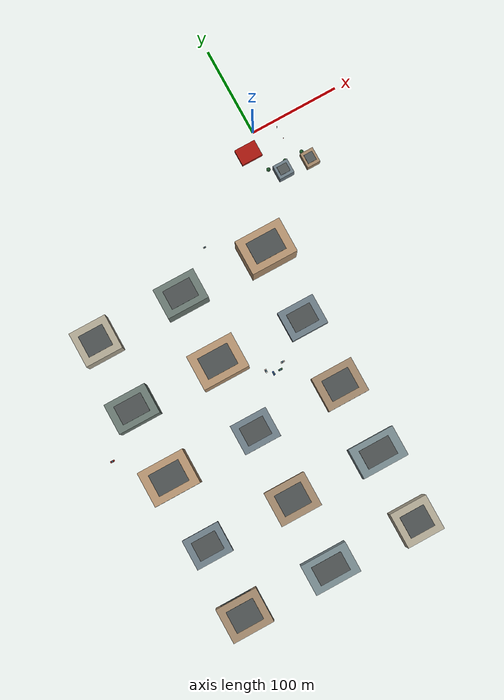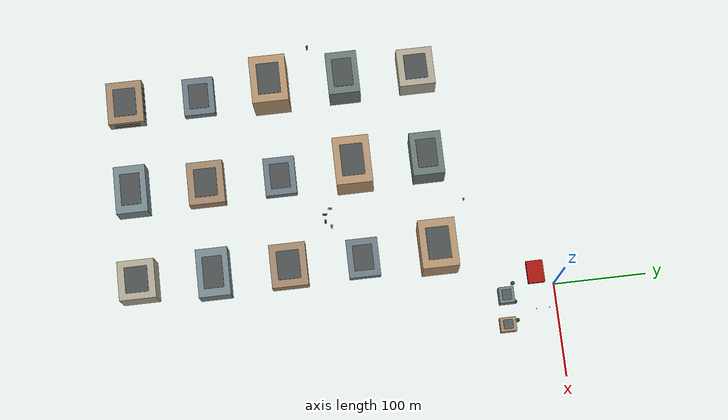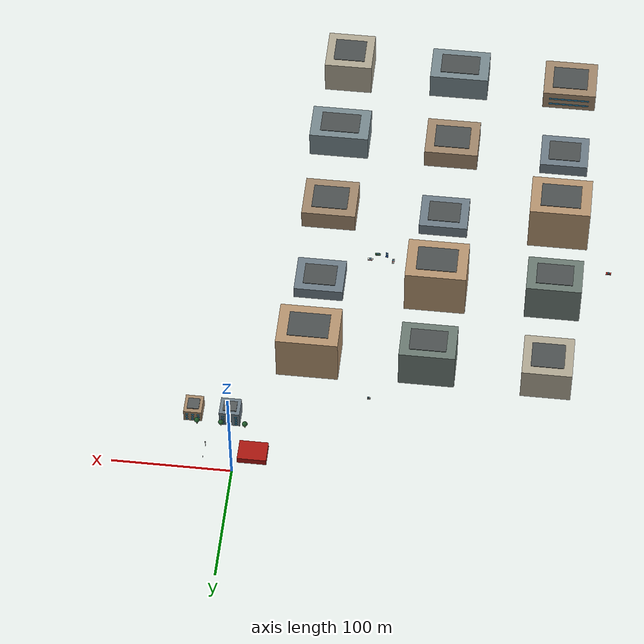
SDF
<sdf version="1.9">
 <world name="smart_city">
  <model name="emergency_station">
   <static>true</static>
   <pose>-15 -18 3 0 0 0</pose>
   <link name="building">
    <collision name="collision"><geometry><box><size>24 18 6</size></box></geometry></collision>
    <visual name="visual">
     <geometry><box><size>24 18 6</size></box></geometry>
     <material><ambient>0.65 0.08 0.05 1</ambient><diffuse>0.65 0.08 0.05 1</diffuse></material>
    </visual>
   </link>
  </model>
  <model name="city_block_06">
   <static>true</static>
   <pose>8 -53 0 0 0 0</pose>
   <link name="building">
    <visual name="facade">
     <pose>0 0 8.0 0 0 0</pose>
     <geometry><box><size>17 16 16</size></box></geometry>
     <material><ambient>0.42 0.48 0.52 1</ambient><diffuse>0.42 0.48 0.52 1</diffuse></material>
    </visual>
    <visual name="window_0_-544">
     <pose>-5.44 8.025 2.00 0 0 0</pose>
     <geometry><box><size>2.2 0.08 1.7</size></box></geometry>
     <material>
      <ambient>0.22 0.60 0.76 1</ambient>
      <diffuse>0.22 0.60 0.76 1</diffuse>
      <specular>0.35 0.35 0.35 1</specular>
     </material>
    </visual>
    <visual name="window_0_0">
     <pose>0.00 8.025 2.00 0 0 0</pose>
     <geometry><box><size>2.2 0.08 1.7</size></box></geometry>
     <material>
      <ambient>0.22 0.60 0.76 1</ambient>
      <diffuse>0.22 0.60 0.76 1</diffuse>
      <specular>0.35 0.35 0.35 1</specular>
     </material>
    </visual>
    <visual name="window_0_544">
     <pose>5.44 8.025 2.00 0 0 0</pose>
     <geometry><box><size>2.2 0.08 1.7</size></box></geometry>
     <material>
      <ambient>0.22 0.60 0.76 1</ambient>
      <diffuse>0.22 0.60 0.76 1</diffuse>
      <specular>0.35 0.35 0.35 1</specular>
     </material>
    </visual>
    <visual name="window_1_-544">
     <pose>-5.44 8.025 5.20 0 0 0</pose>
     <geometry><box><size>2.2 0.08 1.7</size></box></geometry>
     <material>
      <ambient>0.22 0.60 0.76 1</ambient>
      <diffuse>0.22 0.60 0.76 1</diffuse>
      <specular>0.35 0.35 0.35 1</specular>
     </material>
    </visual>
    <visual name="window_1_0">
     <pose>0.00 8.025 5.20 0 0 0</pose>
     <geometry><box><size>2.2 0.08 1.7</size></box></geometry>
     <material>
      <ambient>0.22 0.60 0.76 1</ambient>
      <diffuse>0.22 0.60 0.76 1</diffuse>
      <specular>0.35 0.35 0.35 1</specular>
     </material>
    </visual>
    <visual name="window_1_544">
     <pose>5.44 8.025 5.20 0 0 0</pose>
     <geometry><box><size>2.2 0.08 1.7</size></box></geometry>
     <material>
      <ambient>0.22 0.60 0.76 1</ambient>
      <diffuse>0.22 0.60 0.76 1</diffuse>
      <specular>0.35 0.35 0.35 1</specular>
     </material>
    </visual>
    <visual name="window_2_-544">
     <pose>-5.44 8.025 8.40 0 0 0</pose>
     <geometry><box><size>2.2 0.08 1.7</size></box></geometry>
     <material>
      <ambient>0.22 0.60 0.76 1</ambient>
      <diffuse>0.22 0.60 0.76 1</diffuse>
      <specular>0.35 0.35 0.35 1</specular>
     </material>
    </visual>
    <visual name="window_2_0">
     <pose>0.00 8.025 8.40 0 0 0</pose>
     <geometry><box><size>2.2 0.08 1.7</size></box></geometry>
     <material>
      <ambient>0.22 0.60 0.76 1</ambient>
      <diffuse>0.22 0.60 0.76 1</diffuse>
      <specular>0.35 0.35 0.35 1</specular>
     </material>
    </visual>
    <visual name="window_2_544">
     <pose>5.44 8.025 8.40 0 0 0</pose>
     <geometry><box><size>2.2 0.08 1.7</size></box></geometry>
     <material>
      <ambient>0.22 0.60 0.76 1</ambient>
      <diffuse>0.22 0.60 0.76 1</diffuse>
      <specular>0.35 0.35 0.35 1</specular>
     </material>
    </visual>
    <visual name="window_3_-544">
     <pose>-5.44 8.025 11.60 0 0 0</pose>
     <geometry><box><size>2.2 0.08 1.7</size></box></geometry>
     <material>
      <ambient>0.22 0.60 0.76 1</ambient>
      <diffuse>0.22 0.60 0.76 1</diffuse>
      <specular>0.35 0.35 0.35 1</specular>
     </material>
    </visual>
    <visual name="window_3_0">
     <pose>0.00 8.025 11.60 0 0 0</pose>
     <geometry><box><size>2.2 0.08 1.7</size></box></geometry>
     <material>
      <ambient>0.22 0.60 0.76 1</ambient>
      <diffuse>0.22 0.60 0.76 1</diffuse>
      <specular>0.35 0.35 0.35 1</specular>
     </material>
    </visual>
    <visual name="window_3_544">
     <pose>5.44 8.025 11.60 0 0 0</pose>
     <geometry><box><size>2.2 0.08 1.7</size></box></geometry>
     <material>
      <ambient>0.22 0.60 0.76 1</ambient>
      <diffuse>0.22 0.60 0.76 1</diffuse>
      <specular>0.35 0.35 0.35 1</specular>
     </material>
    </visual>
    <visual name="roof">
     <pose>0 0 16.4 0 0 0</pose>
     <geometry><box><size>11.1 9.6 0.8</size></box></geometry>
     <material><ambient>0.32 0.34 0.34 1</ambient><diffuse>0.32 0.34 0.34 1</diffuse></material>
    </visual>
   </link>
  </model>
  <model name="city_block_07">
   <static>true</static>
   <pose>39 -55 0 0 0 0</pose>
   <link name="building">
    <visual name="facade">
     <pose>0 0 6.0 0 0 0</pose>
     <geometry><box><size>15 17 12</size></box></geometry>
     <material><ambient>0.63 0.52 0.40 1</ambient><diffuse>0.63 0.52 0.40 1</diffuse></material>
    </visual>
    <visual name="window_0_-480">
     <pose>-4.80 8.525 2.00 0 0 0</pose>
     <geometry><box><size>2.2 0.08 1.7</size></box></geometry>
     <material>
      <ambient>0.25 0.62 0.78 1</ambient>
      <diffuse>0.25 0.62 0.78 1</diffuse>
      <specular>0.35 0.35 0.35 1</specular>
     </material>
    </visual>
    <visual name="window_0_0">
     <pose>0.00 8.525 2.00 0 0 0</pose>
     <geometry><box><size>2.2 0.08 1.7</size></box></geometry>
     <material>
      <ambient>0.25 0.62 0.78 1</ambient>
      <diffuse>0.25 0.62 0.78 1</diffuse>
      <specular>0.35 0.35 0.35 1</specular>
     </material>
    </visual>
    <visual name="window_0_480">
     <pose>4.80 8.525 2.00 0 0 0</pose>
     <geometry><box><size>2.2 0.08 1.7</size></box></geometry>
     <material>
      <ambient>0.25 0.62 0.78 1</ambient>
      <diffuse>0.25 0.62 0.78 1</diffuse>
      <specular>0.35 0.35 0.35 1</specular>
     </material>
    </visual>
    <visual name="window_1_-480">
     <pose>-4.80 8.525 5.20 0 0 0</pose>
     <geometry><box><size>2.2 0.08 1.7</size></box></geometry>
     <material>
      <ambient>0.25 0.62 0.78 1</ambient>
      <diffuse>0.25 0.62 0.78 1</diffuse>
      <specular>0.35 0.35 0.35 1</specular>
     </material>
    </visual>
    <visual name="window_1_0">
     <pose>0.00 8.525 5.20 0 0 0</pose>
     <geometry><box><size>2.2 0.08 1.7</size></box></geometry>
     <material>
      <ambient>0.25 0.62 0.78 1</ambient>
      <diffuse>0.25 0.62 0.78 1</diffuse>
      <specular>0.35 0.35 0.35 1</specular>
     </material>
    </visual>
    <visual name="window_1_480">
     <pose>4.80 8.525 5.20 0 0 0</pose>
     <geometry><box><size>2.2 0.08 1.7</size></box></geometry>
     <material>
      <ambient>0.25 0.62 0.78 1</ambient>
      <diffuse>0.25 0.62 0.78 1</diffuse>
      <specular>0.35 0.35 0.35 1</specular>
     </material>
    </visual>
    <visual name="window_2_-480">
     <pose>-4.80 8.525 8.40 0 0 0</pose>
     <geometry><box><size>2.2 0.08 1.7</size></box></geometry>
     <material>
      <ambient>0.25 0.62 0.78 1</ambient>
      <diffuse>0.25 0.62 0.78 1</diffuse>
      <specular>0.35 0.35 0.35 1</specular>
     </material>
    </visual>
    <visual name="window_2_0">
     <pose>0.00 8.525 8.40 0 0 0</pose>
     <geometry><box><size>2.2 0.08 1.7</size></box></geometry>
     <material>
      <ambient>0.25 0.62 0.78 1</ambient>
      <diffuse>0.25 0.62 0.78 1</diffuse>
      <specular>0.35 0.35 0.35 1</specular>
     </material>
    </visual>
    <visual name="window_2_480">
     <pose>4.80 8.525 8.40 0 0 0</pose>
     <geometry><box><size>2.2 0.08 1.7</size></box></geometry>
     <material>
      <ambient>0.25 0.62 0.78 1</ambient>
      <diffuse>0.25 0.62 0.78 1</diffuse>
      <specular>0.35 0.35 0.35 1</specular>
     </material>
    </visual>
    <visual name="roof">
     <pose>0 0 12.4 0 0 0</pose>
     <geometry><box><size>9.8 10.2 0.8</size></box></geometry>
     <material><ambient>0.32 0.34 0.34 1</ambient><diffuse>0.32 0.34 0.34 1</diffuse></material>
    </visual>
   </link>
  </model>
  <model name="street_tree_09">
   <static>true</static>
   <pose>-5 -44 0 0 0 0</pose>
   <link name="tree">
    <visual name="trunk">
     <pose>0 0 2 0 0 0</pose>
     <geometry><cylinder><radius>0.35</radius><length>4</length></cylinder></geometry>
     <material><ambient>0.30 0.18 0.08 1</ambient><diffuse>0.30 0.18 0.08 1</diffuse></material>
    </visual>
    <visual name="crown">
     <pose>0 0 5 0 0 0</pose>
     <geometry><sphere><radius>2.2</radius></sphere></geometry>
     <material><ambient>0.12 0.34 0.16 1</ambient><diffuse>0.12 0.34 0.16 1</diffuse></material>
    </visual>
   </link>
  </model>
  <model name="street_tree_10">
   <static>true</static>
   <pose>15 -44 0 0 0 0</pose>
   <link name="tree">
    <visual name="trunk">
     <pose>0 0 2 0 0 0</pose>
     <geometry><cylinder><radius>0.35</radius><length>4</length></cylinder></geometry>
     <material><ambient>0.30 0.18 0.08 1</ambient><diffuse>0.30 0.18 0.08 1</diffuse></material>
    </visual>
    <visual name="crown">
     <pose>0 0 5 0 0 0</pose>
     <geometry><sphere><radius>2.2</radius></sphere></geometry>
     <material><ambient>0.12 0.34 0.16 1</ambient><diffuse>0.12 0.34 0.16 1</diffuse></material>
    </visual>
   </link>
  </model>
  <model name="street_tree_11">
   <static>true</static>
   <pose>35 -44 0 0 0 0</pose>
   <link name="tree">
    <visual name="trunk">
     <pose>0 0 2 0 0 0</pose>
     <geometry><cylinder><radius>0.35</radius><length>4</length></cylinder></geometry>
     <material><ambient>0.30 0.18 0.08 1</ambient><diffuse>0.30 0.18 0.08 1</diffuse></material>
    </visual>
    <visual name="crown">
     <pose>0 0 5 0 0 0</pose>
     <geometry><sphere><radius>2.2</radius></sphere></geometry>
     <material><ambient>0.12 0.34 0.16 1</ambient><diffuse>0.12 0.34 0.16 1</diffuse></material>
    </visual>
   </link>
  </model>
  <model name="traffic_signal_5">
   <static>true</static>
   <pose>25 -8 0 0 0 0</pose>
   <link name="signal">
    <visual name="mast">
     <pose>0 0 3 0 0 0</pose>
     <geometry><cylinder><radius>0.12</radius><length>6</length></cylinder></geometry>
     <material><ambient>0.12 0.12 0.12 1</ambient><diffuse>0.12 0.12 0.12 1</diffuse></material>
    </visual>
    <visual name="head">
     <pose>0 0 5.8 0 0 0</pose>
     <geometry><box><size>0.55 0.65 1.5</size></box></geometry>
     <material><ambient>0.16 0.17 0.16 1</ambient><diffuse>0.16 0.17 0.16 1</diffuse></material>
    </visual>
    <visual name="red_lamp">
     <pose>0 -0.34 6.2 0 0 0</pose>
     <geometry><sphere><radius>0.16</radius></sphere></geometry>
     <material>
      <ambient>0.9 0.04 0.02 1</ambient>
      <diffuse>0.9 0.04 0.02 1</diffuse>
      <emissive>0.6 0 0 1</emissive>
     </material>
    </visual>
    <visual name="green_lamp">
     <pose>0 -0.34 5.35 0 0 0</pose>
     <geometry><sphere><radius>0.16</radius></sphere></geometry>
     <material><ambient>0.02 0.7 0.12 1</ambient><diffuse>0.02 0.7 0.12 1</diffuse></material>
    </visual>
   </link>
  </model>
  <model name="traffic_signal_6">
   <static>true</static>
   <pose>25 -22 0 0 0 0</pose>
   <link name="signal">
    <visual name="mast">
     <pose>0 0 3 0 0 0</pose>
     <geometry><cylinder><radius>0.12</radius><length>6</length></cylinder></geometry>
     <material><ambient>0.12 0.12 0.12 1</ambient><diffuse>0.12 0.12 0.12 1</diffuse></material>
    </visual>
    <visual name="head">
     <pose>0 0 5.8 0 0 0</pose>
     <geometry><box><size>0.55 0.65 1.5</size></box></geometry>
     <material><ambient>0.16 0.17 0.16 1</ambient><diffuse>0.16 0.17 0.16 1</diffuse></material>
    </visual>
    <visual name="red_lamp">
     <pose>0 -0.34 6.2 0 0 0</pose>
     <geometry><sphere><radius>0.16</radius></sphere></geometry>
     <material>
      <ambient>0.9 0.04 0.02 1</ambient>
      <diffuse>0.9 0.04 0.02 1</diffuse>
      <emissive>0.6 0 0 1</emissive>
     </material>
    </visual>
    <visual name="green_lamp">
     <pose>0 -0.34 5.35 0 0 0</pose>
     <geometry><sphere><radius>0.16</radius></sphere></geometry>
     <material><ambient>0.02 0.7 0.12 1</ambient><diffuse>0.02 0.7 0.12 1</diffuse></material>
    </visual>
   </link>
  </model>
  <model name="chennai_block_001">
   <static>true</static>
   <pose>-250 -440 0 0 0 0</pose>
   <link name="building">
    <collision name="structure">
     <pose>0 0 9.5 0 0 0</pose>
     <geometry><box><size>47 39 19</size></box></geometry>
    </collision>
    <visual name="facade">
     <pose>0 0 9.5 0 0 0</pose>
     <geometry><box><size>47 39 19</size></box></geometry>
     <material><ambient>0.62 0.52 0.41 1</ambient><diffuse>0.62 0.52 0.41 1</diffuse></material>
    </visual>
    <visual name="window_band_y_5_-1">
     <pose>0 -19.54 5.32 0 0 0</pose>
     <geometry><box><size>35.7 0.06 1.8</size></box></geometry>
     <material><ambient>0.20 0.52 0.68 1</ambient><diffuse>0.20 0.52 0.68 1</diffuse></material>
    </visual>
    <visual name="window_band_x_5_-1">
     <pose>-23.54 0 5.32 0 0 0</pose>
     <geometry><box><size>0.06 28.1 1.8</size></box></geometry>
     <material><ambient>0.20 0.52 0.68 1</ambient><diffuse>0.20 0.52 0.68 1</diffuse></material>
    </visual>
    <visual name="window_band_y_5_1">
     <pose>0 19.54 5.32 0 0 0</pose>
     <geometry><box><size>35.7 0.06 1.8</size></box></geometry>
     <material><ambient>0.20 0.52 0.68 1</ambient><diffuse>0.20 0.52 0.68 1</diffuse></material>
    </visual>
    <visual name="window_band_x_5_1">
     <pose>23.54 0 5.32 0 0 0</pose>
     <geometry><box><size>0.06 28.1 1.8</size></box></geometry>
     <material><ambient>0.20 0.52 0.68 1</ambient><diffuse>0.20 0.52 0.68 1</diffuse></material>
    </visual>
    <visual name="window_band_y_11_-1">
     <pose>0 -19.54 11.78 0 0 0</pose>
     <geometry><box><size>35.7 0.06 1.8</size></box></geometry>
     <material><ambient>0.20 0.52 0.68 1</ambient><diffuse>0.20 0.52 0.68 1</diffuse></material>
    </visual>
    <visual name="window_band_x_11_-1">
     <pose>-23.54 0 11.78 0 0 0</pose>
     <geometry><box><size>0.06 28.1 1.8</size></box></geometry>
     <material><ambient>0.20 0.52 0.68 1</ambient><diffuse>0.20 0.52 0.68 1</diffuse></material>
    </visual>
    <visual name="window_band_y_11_1">
     <pose>0 19.54 11.78 0 0 0</pose>
     <geometry><box><size>35.7 0.06 1.8</size></box></geometry>
     <material><ambient>0.20 0.52 0.68 1</ambient><diffuse>0.20 0.52 0.68 1</diffuse></material>
    </visual>
    <visual name="window_band_x_11_1">
     <pose>23.54 0 11.78 0 0 0</pose>
     <geometry><box><size>0.06 28.1 1.8</size></box></geometry>
     <material><ambient>0.20 0.52 0.68 1</ambient><diffuse>0.20 0.52 0.68 1</diffuse></material>
    </visual>
    <visual name="roof">
     <pose>0 0 19.3 0 0 0</pose>
     <geometry><box><size>31.0 24.2 0.6</size></box></geometry>
     <material><ambient>0.29 0.31 0.31 1</ambient><diffuse>0.29 0.31 0.31 1</diffuse></material>
    </visual>
   </link>
  </model>
  <model name="chennai_block_002">
   <static>true</static>
   <pose>-150 -440 0 0 0 0</pose>
   <link name="building">
    <collision name="structure">
     <pose>0 0 13.0 0 0 0</pose>
     <geometry><box><size>52 34 26</size></box></geometry>
    </collision>
    <visual name="facade">
     <pose>0 0 13.0 0 0 0</pose>
     <geometry><box><size>52 34 26</size></box></geometry>
     <material><ambient>0.46 0.53 0.55 1</ambient><diffuse>0.46 0.53 0.55 1</diffuse></material>
    </visual>
    <visual name="roof">
     <pose>0 0 26.3 0 0 0</pose>
     <geometry><box><size>34.3 21.1 0.6</size></box></geometry>
     <material><ambient>0.29 0.31 0.31 1</ambient><diffuse>0.29 0.31 0.31 1</diffuse></material>
    </visual>
   </link>
  </model>
  <model name="chennai_block_003">
   <static>true</static>
   <pose>-50 -440 0 0 0 0</pose>
   <link name="building">
    <collision name="structure">
     <pose>0 0 16.5 0 0 0</pose>
     <geometry><box><size>42 39 33</size></box></geometry>
    </collision>
    <visual name="facade">
     <pose>0 0 16.5 0 0 0</pose>
     <geometry><box><size>42 39 33</size></box></geometry>
     <material><ambient>0.68 0.65 0.57 1</ambient><diffuse>0.68 0.65 0.57 1</diffuse></material>
    </visual>
    <visual name="roof">
     <pose>0 0 33.3 0 0 0</pose>
     <geometry><box><size>27.7 24.2 0.6</size></box></geometry>
     <material><ambient>0.29 0.31 0.31 1</ambient><diffuse>0.29 0.31 0.31 1</diffuse></material>
    </visual>
   </link>
  </model>
  <model name="chennai_block_012">
   <static>true</static>
   <pose>-250 -360 0 0 0 0</pose>
   <link name="building">
    <collision name="structure">
     <pose>0 0 6.0 0 0 0</pose>
     <geometry><box><size>42 34 12</size></box></geometry>
    </collision>
    <visual name="facade">
     <pose>0 0 6.0 0 0 0</pose>
     <geometry><box><size>42 34 12</size></box></geometry>
     <material><ambient>0.42 0.48 0.52 1</ambient><diffuse>0.42 0.48 0.52 1</diffuse></material>
    </visual>
    <visual name="roof">
     <pose>0 0 12.3 0 0 0</pose>
     <geometry><box><size>27.7 21.1 0.6</size></box></geometry>
     <material><ambient>0.29 0.31 0.31 1</ambient><diffuse>0.29 0.31 0.31 1</diffuse></material>
    </visual>
   </link>
  </model>
  <model name="chennai_block_013">
   <static>true</static>
   <pose>-150 -360 0 0 0 0</pose>
   <link name="building">
    <collision name="structure">
     <pose>0 0 9.5 0 0 0</pose>
     <geometry><box><size>47 39 19</size></box></geometry>
    </collision>
    <visual name="facade">
     <pose>0 0 9.5 0 0 0</pose>
     <geometry><box><size>47 39 19</size></box></geometry>
     <material><ambient>0.62 0.52 0.41 1</ambient><diffuse>0.62 0.52 0.41 1</diffuse></material>
    </visual>
    <visual name="roof">
     <pose>0 0 19.3 0 0 0</pose>
     <geometry><box><size>31.0 24.2 0.6</size></box></geometry>
     <material><ambient>0.29 0.31 0.31 1</ambient><diffuse>0.29 0.31 0.31 1</diffuse></material>
    </visual>
   </link>
  </model>
  <model name="chennai_block_014">
   <static>true</static>
   <pose>-50 -360 0 0 0 0</pose>
   <link name="building">
    <collision name="structure">
     <pose>0 0 13.0 0 0 0</pose>
     <geometry><box><size>52 34 26</size></box></geometry>
    </collision>
    <visual name="facade">
     <pose>0 0 13.0 0 0 0</pose>
     <geometry><box><size>52 34 26</size></box></geometry>
     <material><ambient>0.46 0.53 0.55 1</ambient><diffuse>0.46 0.53 0.55 1</diffuse></material>
    </visual>
    <visual name="roof">
     <pose>0 0 26.3 0 0 0</pose>
     <geometry><box><size>34.3 21.1 0.6</size></box></geometry>
     <material><ambient>0.29 0.31 0.31 1</ambient><diffuse>0.29 0.31 0.31 1</diffuse></material>
    </visual>
   </link>
  </model>
  <model name="chennai_block_023">
   <static>true</static>
   <pose>-250 -280 0 0 0 0</pose>
   <link name="building">
    <collision name="structure">
     <pose>0 0 23.5 0 0 0</pose>
     <geometry><box><size>52 39 47</size></box></geometry>
    </collision>
    <visual name="facade">
     <pose>0 0 23.5 0 0 0</pose>
     <geometry><box><size>52 39 47</size></box></geometry>
     <material><ambient>0.70 0.57 0.43 1</ambient><diffuse>0.70 0.57 0.43 1</diffuse></material>
    </visual>
    <visual name="roof">
     <pose>0 0 47.3 0 0 0</pose>
     <geometry><box><size>34.3 24.2 0.6</size></box></geometry>
     <material><ambient>0.29 0.31 0.31 1</ambient><diffuse>0.29 0.31 0.31 1</diffuse></material>
    </visual>
   </link>
  </model>
  <model name="chennai_block_024">
   <static>true</static>
   <pose>-150 -280 0 0 0 0</pose>
   <link name="building">
    <collision name="structure">
     <pose>0 0 6.0 0 0 0</pose>
     <geometry><box><size>42 34 12</size></box></geometry>
    </collision>
    <visual name="facade">
     <pose>0 0 6.0 0 0 0</pose>
     <geometry><box><size>42 34 12</size></box></geometry>
     <material><ambient>0.42 0.48 0.52 1</ambient><diffuse>0.42 0.48 0.52 1</diffuse></material>
    </visual>
    <visual name="roof">
     <pose>0 0 12.3 0 0 0</pose>
     <geometry><box><size>27.7 21.1 0.6</size></box></geometry>
     <material><ambient>0.29 0.31 0.31 1</ambient><diffuse>0.29 0.31 0.31 1</diffuse></material>
    </visual>
   </link>
  </model>
  <model name="chennai_block_025">
   <static>true</static>
   <pose>-50 -280 0 0 0 0</pose>
   <link name="building">
    <collision name="structure">
     <pose>0 0 9.5 0 0 0</pose>
     <geometry><box><size>47 39 19</size></box></geometry>
    </collision>
    <visual name="facade">
     <pose>0 0 9.5 0 0 0</pose>
     <geometry><box><size>47 39 19</size></box></geometry>
     <material><ambient>0.62 0.52 0.41 1</ambient><diffuse>0.62 0.52 0.41 1</diffuse></material>
    </visual>
    <visual name="roof">
     <pose>0 0 19.3 0 0 0</pose>
     <geometry><box><size>31.0 24.2 0.6</size></box></geometry>
     <material><ambient>0.29 0.31 0.31 1</ambient><diffuse>0.29 0.31 0.31 1</diffuse></material>
    </visual>
   </link>
  </model>
  <model name="chennai_block_034">
   <static>true</static>
   <pose>-250 -200 0 0 0 0</pose>
   <link name="building">
    <collision name="structure">
     <pose>0 0 20.0 0 0 0</pose>
     <geometry><box><size>47 34 40</size></box></geometry>
    </collision>
    <visual name="facade">
     <pose>0 0 20.0 0 0 0</pose>
     <geometry><box><size>47 34 40</size></box></geometry>
     <material><ambient>0.41 0.47 0.44 1</ambient><diffuse>0.41 0.47 0.44 1</diffuse></material>
    </visual>
    <visual name="roof">
     <pose>0 0 40.3 0 0 0</pose>
     <geometry><box><size>31.0 21.1 0.6</size></box></geometry>
     <material><ambient>0.29 0.31 0.31 1</ambient><diffuse>0.29 0.31 0.31 1</diffuse></material>
    </visual>
   </link>
  </model>
  <model name="chennai_block_035">
   <static>true</static>
   <pose>-150 -200 0 0 0 0</pose>
   <link name="building">
    <collision name="structure">
     <pose>0 0 23.5 0 0 0</pose>
     <geometry><box><size>52 39 47</size></box></geometry>
    </collision>
    <visual name="facade">
     <pose>0 0 23.5 0 0 0</pose>
     <geometry><box><size>52 39 47</size></box></geometry>
     <material><ambient>0.70 0.57 0.43 1</ambient><diffuse>0.70 0.57 0.43 1</diffuse></material>
    </visual>
    <visual name="roof">
     <pose>0 0 47.3 0 0 0</pose>
     <geometry><box><size>34.3 24.2 0.6</size></box></geometry>
     <material><ambient>0.29 0.31 0.31 1</ambient><diffuse>0.29 0.31 0.31 1</diffuse></material>
    </visual>
   </link>
  </model>
  <model name="chennai_block_036">
   <static>true</static>
   <pose>-50 -200 0 0 0 0</pose>
   <link name="building">
    <collision name="structure">
     <pose>0 0 6.0 0 0 0</pose>
     <geometry><box><size>42 34 12</size></box></geometry>
    </collision>
    <visual name="facade">
     <pose>0 0 6.0 0 0 0</pose>
     <geometry><box><size>42 34 12</size></box></geometry>
     <material><ambient>0.42 0.48 0.52 1</ambient><diffuse>0.42 0.48 0.52 1</diffuse></material>
    </visual>
    <visual name="roof">
     <pose>0 0 12.3 0 0 0</pose>
     <geometry><box><size>27.7 21.1 0.6</size></box></geometry>
     <material><ambient>0.29 0.31 0.31 1</ambient><diffuse>0.29 0.31 0.31 1</diffuse></material>
    </visual>
   </link>
  </model>
  <model name="chennai_block_045">
   <static>true</static>
   <pose>-250 -120 0 0 0 0</pose>
   <link name="building">
    <collision name="structure">
     <pose>0 0 16.5 0 0 0</pose>
     <geometry><box><size>42 39 33</size></box></geometry>
    </collision>
    <visual name="facade">
     <pose>0 0 16.5 0 0 0</pose>
     <geometry><box><size>42 39 33</size></box></geometry>
     <material><ambient>0.68 0.65 0.57 1</ambient><diffuse>0.68 0.65 0.57 1</diffuse></material>
    </visual>
    <visual name="roof">
     <pose>0 0 33.3 0 0 0</pose>
     <geometry><box><size>27.7 24.2 0.6</size></box></geometry>
     <material><ambient>0.29 0.31 0.31 1</ambient><diffuse>0.29 0.31 0.31 1</diffuse></material>
    </visual>
   </link>
  </model>
  <model name="chennai_block_046">
   <static>true</static>
   <pose>-150 -120 0 0 0 0</pose>
   <link name="building">
    <collision name="structure">
     <pose>0 0 20.0 0 0 0</pose>
     <geometry><box><size>47 34 40</size></box></geometry>
    </collision>
    <visual name="facade">
     <pose>0 0 20.0 0 0 0</pose>
     <geometry><box><size>47 34 40</size></box></geometry>
     <material><ambient>0.41 0.47 0.44 1</ambient><diffuse>0.41 0.47 0.44 1</diffuse></material>
    </visual>
    <visual name="roof">
     <pose>0 0 40.3 0 0 0</pose>
     <geometry><box><size>31.0 21.1 0.6</size></box></geometry>
     <material><ambient>0.29 0.31 0.31 1</ambient><diffuse>0.29 0.31 0.31 1</diffuse></material>
    </visual>
   </link>
  </model>
  <model name="chennai_block_047">
   <static>true</static>
   <pose>-50 -120 0 0 0 0</pose>
   <link name="building">
    <collision name="structure">
     <pose>0 0 23.5 0 0 0</pose>
     <geometry><box><size>52 39 47</size></box></geometry>
    </collision>
    <visual name="facade">
     <pose>0 0 23.5 0 0 0</pose>
     <geometry><box><size>52 39 47</size></box></geometry>
     <material><ambient>0.70 0.57 0.43 1</ambient><diffuse>0.70 0.57 0.43 1</diffuse></material>
    </visual>
    <visual name="roof">
     <pose>0 0 47.3 0 0 0</pose>
     <geometry><box><size>34.3 24.2 0.6</size></box></geometry>
     <material><ambient>0.29 0.31 0.31 1</ambient><diffuse>0.29 0.31 0.31 1</diffuse></material>
    </visual>
   </link>
  </model>
  <model name="chennai_traffic_01">
   <static>false</static>
   <pose>-296 -236 0 0 0 0.0000</pose>
   <link name="base_link">
    <pose>0 0 0.72 0 0 0</pose>
    <inertial>
     <mass>650</mass>
     <inertia><ixx>487.5</ixx><iyy>715.0</iyy><izz>910.0</izz><ixy>0</ixy><ixz>0</ixz><iyz>0</iyz></inertia>
    </inertial>
    <collision name="body_collision"><geometry><box><size>4.5 1.95 0.96</size></box></geometry></collision>
    <visual name="body">
     <geometry><box><size>4.5 1.95 0.96</size></box></geometry>
     <material><ambient>0.72 0.14 0.08 1</ambient><diffuse>0.72 0.14 0.08 1</diffuse></material>
    </visual>
    <visual name="cabin">
     <pose>-0.15 0 0.63 0 0 0</pose>
     <geometry><box><size>2.16 1.60 0.63</size></box></geometry>
     <material><ambient>0.20 0.35 0.42 1</ambient><diffuse>0.20 0.35 0.42 1</diffuse></material>
    </visual>
    <collision name="wheel_collision_r_r">
     <pose>-1.40 -0.90 -0.38 1.5708 0 0</pose>
     <geometry><cylinder><radius>0.34</radius><length>0.20</length></cylinder></geometry>
     <surface><friction><ode><mu>0.004</mu><mu2>0.004</mu2></ode></friction></surface>
    </collision>
    <visual name="wheel_r_r">
     <pose>-1.40 -0.90 -0.38 1.5708 0 0</pose>
     <geometry><cylinder><radius>0.34</radius><length>0.20</length></cylinder></geometry>
     <material><ambient>0.055 0.055 0.06 1</ambient><diffuse>0.055 0.055 0.06 1</diffuse></material>
    </visual>
    <collision name="wheel_collision_r_l">
     <pose>-1.40 0.90 -0.38 1.5708 0 0</pose>
     <geometry><cylinder><radius>0.34</radius><length>0.20</length></cylinder></geometry>
     <surface><friction><ode><mu>0.004</mu><mu2>0.004</mu2></ode></friction></surface>
    </collision>
    <visual name="wheel_r_l">
     <pose>-1.40 0.90 -0.38 1.5708 0 0</pose>
     <geometry><cylinder><radius>0.34</radius><length>0.20</length></cylinder></geometry>
     <material><ambient>0.055 0.055 0.06 1</ambient><diffuse>0.055 0.055 0.06 1</diffuse></material>
    </visual>
    <collision name="wheel_collision_f_r">
     <pose>1.40 -0.90 -0.38 1.5708 0 0</pose>
     <geometry><cylinder><radius>0.34</radius><length>0.20</length></cylinder></geometry>
     <surface><friction><ode><mu>0.004</mu><mu2>0.004</mu2></ode></friction></surface>
    </collision>
    <visual name="wheel_f_r">
     <pose>1.40 -0.90 -0.38 1.5708 0 0</pose>
     <geometry><cylinder><radius>0.34</radius><length>0.20</length></cylinder></geometry>
     <material><ambient>0.055 0.055 0.06 1</ambient><diffuse>0.055 0.055 0.06 1</diffuse></material>
    </visual>
    <collision name="wheel_collision_f_l">
     <pose>1.40 0.90 -0.38 1.5708 0 0</pose>
     <geometry><cylinder><radius>0.34</radius><length>0.20</length></cylinder></geometry>
     <surface><friction><ode><mu>0.004</mu><mu2>0.004</mu2></ode></friction></surface>
    </collision>
    <visual name="wheel_f_l">
     <pose>1.40 0.90 -0.38 1.5708 0 0</pose>
     <geometry><cylinder><radius>0.34</radius><length>0.20</length></cylinder></geometry>
     <material><ambient>0.055 0.055 0.06 1</ambient><diffuse>0.055 0.055 0.06 1</diffuse></material>
    </visual>
   </link>
   <plugin filename="gz-sim-trajectory-follower-system" name="gz::sim::systems::TrajectoryFollower">
    <link_name>base_link</link_name>
    <loop>true</loop>
    <range_tolerance>3.0</range_tolerance>
    <bearing_tolerance>8.0</bearing_tolerance>
    <force>90</force>
    <torque>220</torque>
    <waypoints>
     <waypoint>-296 -236</waypoint>
     <waypoint>-104 -236</waypoint>
     <waypoint>-104 -84</waypoint>
     <waypoint>-296 -84</waypoint>
    </waypoints>
   </plugin>
  </model>
  <model name="chennai_traffic_02">
   <static>false</static>
   <pose>-104 -236 0 0 0 1.5708</pose>
   <link name="base_link">
    <pose>0 0 0.72 0 0 0</pose>
    <inertial>
     <mass>650</mass>
     <inertia><ixx>487.5</ixx><iyy>715.0</iyy><izz>910.0</izz><ixy>0</ixy><ixz>0</ixz><iyz>0</iyz></inertia>
    </inertial>
    <collision name="body_collision"><geometry><box><size>4.5 1.95 0.96</size></box></geometry></collision>
    <visual name="body">
     <geometry><box><size>4.5 1.95 0.96</size></box></geometry>
     <material><ambient>0.12 0.27 0.55 1</ambient><diffuse>0.12 0.27 0.55 1</diffuse></material>
    </visual>
    <visual name="cabin">
     <pose>-0.15 0 0.63 0 0 0</pose>
     <geometry><box><size>2.16 1.60 0.63</size></box></geometry>
     <material><ambient>0.20 0.35 0.42 1</ambient><diffuse>0.20 0.35 0.42 1</diffuse></material>
    </visual>
    <collision name="wheel_collision_r_r">
     <pose>-1.40 -0.90 -0.38 1.5708 0 0</pose>
     <geometry><cylinder><radius>0.34</radius><length>0.20</length></cylinder></geometry>
     <surface><friction><ode><mu>0.004</mu><mu2>0.004</mu2></ode></friction></surface>
    </collision>
    <visual name="wheel_r_r">
     <pose>-1.40 -0.90 -0.38 1.5708 0 0</pose>
     <geometry><cylinder><radius>0.34</radius><length>0.20</length></cylinder></geometry>
     <material><ambient>0.055 0.055 0.06 1</ambient><diffuse>0.055 0.055 0.06 1</diffuse></material>
    </visual>
    <collision name="wheel_collision_r_l">
     <pose>-1.40 0.90 -0.38 1.5708 0 0</pose>
     <geometry><cylinder><radius>0.34</radius><length>0.20</length></cylinder></geometry>
     <surface><friction><ode><mu>0.004</mu><mu2>0.004</mu2></ode></friction></surface>
    </collision>
    <visual name="wheel_r_l">
     <pose>-1.40 0.90 -0.38 1.5708 0 0</pose>
     <geometry><cylinder><radius>0.34</radius><length>0.20</length></cylinder></geometry>
     <material><ambient>0.055 0.055 0.06 1</ambient><diffuse>0.055 0.055 0.06 1</diffuse></material>
    </visual>
    <collision name="wheel_collision_f_r">
     <pose>1.40 -0.90 -0.38 1.5708 0 0</pose>
     <geometry><cylinder><radius>0.34</radius><length>0.20</length></cylinder></geometry>
     <surface><friction><ode><mu>0.004</mu><mu2>0.004</mu2></ode></friction></surface>
    </collision>
    <visual name="wheel_f_r">
     <pose>1.40 -0.90 -0.38 1.5708 0 0</pose>
     <geometry><cylinder><radius>0.34</radius><length>0.20</length></cylinder></geometry>
     <material><ambient>0.055 0.055 0.06 1</ambient><diffuse>0.055 0.055 0.06 1</diffuse></material>
    </visual>
    <collision name="wheel_collision_f_l">
     <pose>1.40 0.90 -0.38 1.5708 0 0</pose>
     <geometry><cylinder><radius>0.34</radius><length>0.20</length></cylinder></geometry>
     <surface><friction><ode><mu>0.004</mu><mu2>0.004</mu2></ode></friction></surface>
    </collision>
    <visual name="wheel_f_l">
     <pose>1.40 0.90 -0.38 1.5708 0 0</pose>
     <geometry><cylinder><radius>0.34</radius><length>0.20</length></cylinder></geometry>
     <material><ambient>0.055 0.055 0.06 1</ambient><diffuse>0.055 0.055 0.06 1</diffuse></material>
    </visual>
   </link>
   <plugin filename="gz-sim-trajectory-follower-system" name="gz::sim::systems::TrajectoryFollower">
    <link_name>base_link</link_name>
    <loop>true</loop>
    <range_tolerance>3.0</range_tolerance>
    <bearing_tolerance>8.0</bearing_tolerance>
    <force>90</force>
    <torque>220</torque>
    <waypoints>
     <waypoint>-104 -236</waypoint>
     <waypoint>-104 -84</waypoint>
     <waypoint>-296 -84</waypoint>
     <waypoint>-296 -236</waypoint>
    </waypoints>
   </plugin>
  </model>
  <model name="chennai_traffic_03">
   <static>false</static>
   <pose>-104 -84 0 0 0 3.1416</pose>
   <link name="base_link">
    <pose>0 0 0.72 0 0 0</pose>
    <inertial>
     <mass>340</mass>
     <inertia><ixx>255.0</ixx><iyy>374.0</iyy><izz>476.0</izz><ixy>0</ixy><ixz>0</ixz><iyz>0</iyz></inertia>
    </inertial>
    <collision name="body_collision"><geometry><box><size>2.7 1.55 1.10</size></box></geometry></collision>
    <visual name="body">
     <geometry><box><size>2.7 1.55 1.10</size></box></geometry>
     <material><ambient>0.72 0.72 0.68 1</ambient><diffuse>0.72 0.72 0.68 1</diffuse></material>
    </visual>
    <visual name="cabin">
     <pose>-0.15 0 0.72 0 0 0</pose>
     <geometry><box><size>1.296 1.27 0.72</size></box></geometry>
     <material><ambient>0.20 0.35 0.42 1</ambient><diffuse>0.20 0.35 0.42 1</diffuse></material>
    </visual>
    <collision name="wheel_collision_r_r">
     <pose>-0.84 -0.71 -0.38 1.5708 0 0</pose>
     <geometry><cylinder><radius>0.34</radius><length>0.20</length></cylinder></geometry>
     <surface><friction><ode><mu>0.004</mu><mu2>0.004</mu2></ode></friction></surface>
    </collision>
    <visual name="wheel_r_r">
     <pose>-0.84 -0.71 -0.38 1.5708 0 0</pose>
     <geometry><cylinder><radius>0.34</radius><length>0.20</length></cylinder></geometry>
     <material><ambient>0.055 0.055 0.06 1</ambient><diffuse>0.055 0.055 0.06 1</diffuse></material>
    </visual>
    <collision name="wheel_collision_r_l">
     <pose>-0.84 0.71 -0.38 1.5708 0 0</pose>
     <geometry><cylinder><radius>0.34</radius><length>0.20</length></cylinder></geometry>
     <surface><friction><ode><mu>0.004</mu><mu2>0.004</mu2></ode></friction></surface>
    </collision>
    <visual name="wheel_r_l">
     <pose>-0.84 0.71 -0.38 1.5708 0 0</pose>
     <geometry><cylinder><radius>0.34</radius><length>0.20</length></cylinder></geometry>
     <material><ambient>0.055 0.055 0.06 1</ambient><diffuse>0.055 0.055 0.06 1</diffuse></material>
    </visual>
    <collision name="wheel_collision_f_r">
     <pose>0.84 -0.71 -0.38 1.5708 0 0</pose>
     <geometry><cylinder><radius>0.34</radius><length>0.20</length></cylinder></geometry>
     <surface><friction><ode><mu>0.004</mu><mu2>0.004</mu2></ode></friction></surface>
    </collision>
    <visual name="wheel_f_r">
     <pose>0.84 -0.71 -0.38 1.5708 0 0</pose>
     <geometry><cylinder><radius>0.34</radius><length>0.20</length></cylinder></geometry>
     <material><ambient>0.055 0.055 0.06 1</ambient><diffuse>0.055 0.055 0.06 1</diffuse></material>
    </visual>
    <collision name="wheel_collision_f_l">
     <pose>0.84 0.71 -0.38 1.5708 0 0</pose>
     <geometry><cylinder><radius>0.34</radius><length>0.20</length></cylinder></geometry>
     <surface><friction><ode><mu>0.004</mu><mu2>0.004</mu2></ode></friction></surface>
    </collision>
    <visual name="wheel_f_l">
     <pose>0.84 0.71 -0.38 1.5708 0 0</pose>
     <geometry><cylinder><radius>0.34</radius><length>0.20</length></cylinder></geometry>
     <material><ambient>0.055 0.055 0.06 1</ambient><diffuse>0.055 0.055 0.06 1</diffuse></material>
    </visual>
   </link>
   <plugin filename="gz-sim-trajectory-follower-system" name="gz::sim::systems::TrajectoryFollower">
    <link_name>base_link</link_name>
    <loop>true</loop>
    <range_tolerance>3.0</range_tolerance>
    <bearing_tolerance>8.0</bearing_tolerance>
    <force>90</force>
    <torque>220</torque>
    <waypoints>
     <waypoint>-104 -84</waypoint>
     <waypoint>-296 -84</waypoint>
     <waypoint>-296 -236</waypoint>
     <waypoint>-104 -236</waypoint>
    </waypoints>
   </plugin>
  </model>
  <model name="chennai_traffic_04">
   <static>false</static>
   <pose>-96 -236 0 0 0 0.0000</pose>
   <link name="base_link">
    <pose>0 0 0.72 0 0 0</pose>
    <inertial>
     <mass>650</mass>
     <inertia><ixx>487.5</ixx><iyy>715.0</iyy><izz>910.0</izz><ixy>0</ixy><ixz>0</ixz><iyz>0</iyz></inertia>
    </inertial>
    <collision name="body_collision"><geometry><box><size>4.5 1.95 0.96</size></box></geometry></collision>
    <visual name="body">
     <geometry><box><size>4.5 1.95 0.96</size></box></geometry>
     <material><ambient>0.18 0.37 0.22 1</ambient><diffuse>0.18 0.37 0.22 1</diffuse></material>
    </visual>
    <visual name="cabin">
     <pose>-0.15 0 0.63 0 0 0</pose>
     <geometry><box><size>2.16 1.60 0.63</size></box></geometry>
     <material><ambient>0.20 0.35 0.42 1</ambient><diffuse>0.20 0.35 0.42 1</diffuse></material>
    </visual>
    <collision name="wheel_collision_r_r">
     <pose>-1.40 -0.90 -0.38 1.5708 0 0</pose>
     <geometry><cylinder><radius>0.34</radius><length>0.20</length></cylinder></geometry>
     <surface><friction><ode><mu>0.004</mu><mu2>0.004</mu2></ode></friction></surface>
    </collision>
    <visual name="wheel_r_r">
     <pose>-1.40 -0.90 -0.38 1.5708 0 0</pose>
     <geometry><cylinder><radius>0.34</radius><length>0.20</length></cylinder></geometry>
     <material><ambient>0.055 0.055 0.06 1</ambient><diffuse>0.055 0.055 0.06 1</diffuse></material>
    </visual>
    <collision name="wheel_collision_r_l">
     <pose>-1.40 0.90 -0.38 1.5708 0 0</pose>
     <geometry><cylinder><radius>0.34</radius><length>0.20</length></cylinder></geometry>
     <surface><friction><ode><mu>0.004</mu><mu2>0.004</mu2></ode></friction></surface>
    </collision>
    <visual name="wheel_r_l">
     <pose>-1.40 0.90 -0.38 1.5708 0 0</pose>
     <geometry><cylinder><radius>0.34</radius><length>0.20</length></cylinder></geometry>
     <material><ambient>0.055 0.055 0.06 1</ambient><diffuse>0.055 0.055 0.06 1</diffuse></material>
    </visual>
    <collision name="wheel_collision_f_r">
     <pose>1.40 -0.90 -0.38 1.5708 0 0</pose>
     <geometry><cylinder><radius>0.34</radius><length>0.20</length></cylinder></geometry>
     <surface><friction><ode><mu>0.004</mu><mu2>0.004</mu2></ode></friction></surface>
    </collision>
    <visual name="wheel_f_r">
     <pose>1.40 -0.90 -0.38 1.5708 0 0</pose>
     <geometry><cylinder><radius>0.34</radius><length>0.20</length></cylinder></geometry>
     <material><ambient>0.055 0.055 0.06 1</ambient><diffuse>0.055 0.055 0.06 1</diffuse></material>
    </visual>
    <collision name="wheel_collision_f_l">
     <pose>1.40 0.90 -0.38 1.5708 0 0</pose>
     <geometry><cylinder><radius>0.34</radius><length>0.20</length></cylinder></geometry>
     <surface><friction><ode><mu>0.004</mu><mu2>0.004</mu2></ode></friction></surface>
    </collision>
    <visual name="wheel_f_l">
     <pose>1.40 0.90 -0.38 1.5708 0 0</pose>
     <geometry><cylinder><radius>0.34</radius><length>0.20</length></cylinder></geometry>
     <material><ambient>0.055 0.055 0.06 1</ambient><diffuse>0.055 0.055 0.06 1</diffuse></material>
    </visual>
   </link>
   <plugin filename="gz-sim-trajectory-follower-system" name="gz::sim::systems::TrajectoryFollower">
    <link_name>base_link</link_name>
    <loop>true</loop>
    <range_tolerance>3.0</range_tolerance>
    <bearing_tolerance>8.0</bearing_tolerance>
    <force>90</force>
    <torque>220</torque>
    <waypoints>
     <waypoint>-96 -236</waypoint>
     <waypoint>96 -236</waypoint>
     <waypoint>96 -84</waypoint>
     <waypoint>-96 -84</waypoint>
    </waypoints>
   </plugin>
  </model>
  <model name="chennai_ambulance_01">
   <static>false</static>
   <pose>-110 -230 0 0 0 1.5708</pose>
   <link name="base_link">
    <pose>0 0 0.72 0 0 0</pose>
    <inertial>
     <mass>650</mass>
     <inertia><ixx>487.5</ixx><iyy>715.0</iyy><izz>910.0</izz><ixy>0</ixy><ixz>0</ixz><iyz>0</iyz></inertia>
    </inertial>
    <collision name="body_collision"><geometry><box><size>4.5 1.95 0.96</size></box></geometry></collision>
    <visual name="body">
     <geometry><box><size>4.5 1.95 0.96</size></box></geometry>
     <material><ambient>0.92 0.92 0.88 1</ambient><diffuse>0.92 0.92 0.88 1</diffuse></material>
    </visual>
    <visual name="cabin">
     <pose>-0.15 0 0.63 0 0 0</pose>
     <geometry><box><size>2.16 1.60 0.63</size></box></geometry>
     <material><ambient>0.20 0.35 0.42 1</ambient><diffuse>0.20 0.35 0.42 1</diffuse></material>
    </visual>
    <visual name="red_emergency_stripe_-1">
     <pose>0 -0.990 -0.06 0 0 0</pose>
     <geometry><box><size>3.42 0.035 0.28</size></box></geometry>
     <material><ambient>0.82 0.025 0.02 1</ambient><diffuse>0.82 0.025 0.02 1</diffuse></material>
    </visual>
    <visual name="red_emergency_stripe_1">
     <pose>0 0.990 -0.06 0 0 0</pose>
     <geometry><box><size>3.42 0.035 0.28</size></box></geometry>
     <material><ambient>0.82 0.025 0.02 1</ambient><diffuse>0.82 0.025 0.02 1</diffuse></material>
    </visual>
    <visual name="blue_lightbar">
     <pose>-0.1 0 0.8 0 0 0</pose>
     <geometry><box><size>0.8 0.3 0.16</size></box></geometry>
     <material>
      <ambient>0.02 0.16 0.95 1</ambient>
      <diffuse>0.02 0.16 0.95 1</diffuse>
      <emissive>0.02 0.08 0.65 1</emissive>
     </material>
    </visual>
    <visual name="roof_cross">
     <pose>1.25 0 0.66 0 0 0</pose>
     <geometry><box><size>0.3 0.92 0.08</size></box></geometry>
     <material><ambient>0.9 0.04 0.02 1</ambient><diffuse>0.9 0.04 0.02 1</diffuse></material>
    </visual>
    <collision name="wheel_collision_r_r">
     <pose>-1.40 -0.90 -0.38 1.5708 0 0</pose>
     <geometry><cylinder><radius>0.34</radius><length>0.20</length></cylinder></geometry>
     <surface><friction><ode><mu>0.004</mu><mu2>0.004</mu2></ode></friction></surface>
    </collision>
    <visual name="wheel_r_r">
     <pose>-1.40 -0.90 -0.38 1.5708 0 0</pose>
     <geometry><cylinder><radius>0.34</radius><length>0.20</length></cylinder></geometry>
     <material><ambient>0.055 0.055 0.06 1</ambient><diffuse>0.055 0.055 0.06 1</diffuse></material>
    </visual>
    <collision name="wheel_collision_r_l">
     <pose>-1.40 0.90 -0.38 1.5708 0 0</pose>
     <geometry><cylinder><radius>0.34</radius><length>0.20</length></cylinder></geometry>
     <surface><friction><ode><mu>0.004</mu><mu2>0.004</mu2></ode></friction></surface>
    </collision>
    <visual name="wheel_r_l">
     <pose>-1.40 0.90 -0.38 1.5708 0 0</pose>
     <geometry><cylinder><radius>0.34</radius><length>0.20</length></cylinder></geometry>
     <material><ambient>0.055 0.055 0.06 1</ambient><diffuse>0.055 0.055 0.06 1</diffuse></material>
    </visual>
    <collision name="wheel_collision_f_r">
     <pose>1.40 -0.90 -0.38 1.5708 0 0</pose>
     <geometry><cylinder><radius>0.34</radius><length>0.20</length></cylinder></geometry>
     <surface><friction><ode><mu>0.004</mu><mu2>0.004</mu2></ode></friction></surface>
    </collision>
    <visual name="wheel_f_r">
     <pose>1.40 -0.90 -0.38 1.5708 0 0</pose>
     <geometry><cylinder><radius>0.34</radius><length>0.20</length></cylinder></geometry>
     <material><ambient>0.055 0.055 0.06 1</ambient><diffuse>0.055 0.055 0.06 1</diffuse></material>
    </visual>
    <collision name="wheel_collision_f_l">
     <pose>1.40 0.90 -0.38 1.5708 0 0</pose>
     <geometry><cylinder><radius>0.34</radius><length>0.20</length></cylinder></geometry>
     <surface><friction><ode><mu>0.004</mu><mu2>0.004</mu2></ode></friction></surface>
    </collision>
    <visual name="wheel_f_l">
     <pose>1.40 0.90 -0.38 1.5708 0 0</pose>
     <geometry><cylinder><radius>0.34</radius><length>0.20</length></cylinder></geometry>
     <material><ambient>0.055 0.055 0.06 1</ambient><diffuse>0.055 0.055 0.06 1</diffuse></material>
    </visual>
   </link>
   <plugin filename="gz-sim-trajectory-follower-system" name="gz::sim::systems::TrajectoryFollower">
    <link_name>base_link</link_name>
    <loop>true</loop>
    <range_tolerance>3.0</range_tolerance>
    <bearing_tolerance>8.0</bearing_tolerance>
    <force>90</force>
    <torque>220</torque>
    <waypoints>
     <waypoint>-110 -230</waypoint>
     <waypoint>-110 -90</waypoint>
     <waypoint>-290 -90</waypoint>
     <waypoint>-290 -230</waypoint>
    </waypoints>
   </plugin>
  </model>
  <model name="chennai_ambulance_02">
   <static>false</static>
   <pose>-90 -230 0 0 0 0.0000</pose>
   <link name="base_link">
    <pose>0 0 0.72 0 0 0</pose>
    <inertial>
     <mass>650</mass>
     <inertia><ixx>487.5</ixx><iyy>715.0</iyy><izz>910.0</izz><ixy>0</ixy><ixz>0</ixz><iyz>0</iyz></inertia>
    </inertial>
    <collision name="body_collision"><geometry><box><size>4.5 1.95 0.96</size></box></geometry></collision>
    <visual name="body">
     <geometry><box><size>4.5 1.95 0.96</size></box></geometry>
     <material><ambient>0.92 0.92 0.88 1</ambient><diffuse>0.92 0.92 0.88 1</diffuse></material>
    </visual>
    <visual name="cabin">
     <pose>-0.15 0 0.63 0 0 0</pose>
     <geometry><box><size>2.16 1.60 0.63</size></box></geometry>
     <material><ambient>0.20 0.35 0.42 1</ambient><diffuse>0.20 0.35 0.42 1</diffuse></material>
    </visual>
    <visual name="red_emergency_stripe_-1">
     <pose>0 -0.990 -0.06 0 0 0</pose>
     <geometry><box><size>3.42 0.035 0.28</size></box></geometry>
     <material><ambient>0.82 0.025 0.02 1</ambient><diffuse>0.82 0.025 0.02 1</diffuse></material>
    </visual>
    <visual name="red_emergency_stripe_1">
     <pose>0 0.990 -0.06 0 0 0</pose>
     <geometry><box><size>3.42 0.035 0.28</size></box></geometry>
     <material><ambient>0.82 0.025 0.02 1</ambient><diffuse>0.82 0.025 0.02 1</diffuse></material>
    </visual>
    <visual name="blue_lightbar">
     <pose>-0.1 0 0.8 0 0 0</pose>
     <geometry><box><size>0.8 0.3 0.16</size></box></geometry>
     <material>
      <ambient>0.02 0.16 0.95 1</ambient>
      <diffuse>0.02 0.16 0.95 1</diffuse>
      <emissive>0.02 0.08 0.65 1</emissive>
     </material>
    </visual>
    <visual name="roof_cross">
     <pose>1.25 0 0.66 0 0 0</pose>
     <geometry><box><size>0.3 0.92 0.08</size></box></geometry>
     <material><ambient>0.9 0.04 0.02 1</ambient><diffuse>0.9 0.04 0.02 1</diffuse></material>
    </visual>
    <collision name="wheel_collision_r_r">
     <pose>-1.40 -0.90 -0.38 1.5708 0 0</pose>
     <geometry><cylinder><radius>0.34</radius><length>0.20</length></cylinder></geometry>
     <surface><friction><ode><mu>0.004</mu><mu2>0.004</mu2></ode></friction></surface>
    </collision>
    <visual name="wheel_r_r">
     <pose>-1.40 -0.90 -0.38 1.5708 0 0</pose>
     <geometry><cylinder><radius>0.34</radius><length>0.20</length></cylinder></geometry>
     <material><ambient>0.055 0.055 0.06 1</ambient><diffuse>0.055 0.055 0.06 1</diffuse></material>
    </visual>
    <collision name="wheel_collision_r_l">
     <pose>-1.40 0.90 -0.38 1.5708 0 0</pose>
     <geometry><cylinder><radius>0.34</radius><length>0.20</length></cylinder></geometry>
     <surface><friction><ode><mu>0.004</mu><mu2>0.004</mu2></ode></friction></surface>
    </collision>
    <visual name="wheel_r_l">
     <pose>-1.40 0.90 -0.38 1.5708 0 0</pose>
     <geometry><cylinder><radius>0.34</radius><length>0.20</length></cylinder></geometry>
     <material><ambient>0.055 0.055 0.06 1</ambient><diffuse>0.055 0.055 0.06 1</diffuse></material>
    </visual>
    <collision name="wheel_collision_f_r">
     <pose>1.40 -0.90 -0.38 1.5708 0 0</pose>
     <geometry><cylinder><radius>0.34</radius><length>0.20</length></cylinder></geometry>
     <surface><friction><ode><mu>0.004</mu><mu2>0.004</mu2></ode></friction></surface>
    </collision>
    <visual name="wheel_f_r">
     <pose>1.40 -0.90 -0.38 1.5708 0 0</pose>
     <geometry><cylinder><radius>0.34</radius><length>0.20</length></cylinder></geometry>
     <material><ambient>0.055 0.055 0.06 1</ambient><diffuse>0.055 0.055 0.06 1</diffuse></material>
    </visual>
    <collision name="wheel_collision_f_l">
     <pose>1.40 0.90 -0.38 1.5708 0 0</pose>
     <geometry><cylinder><radius>0.34</radius><length>0.20</length></cylinder></geometry>
     <surface><friction><ode><mu>0.004</mu><mu2>0.004</mu2></ode></friction></surface>
    </collision>
    <visual name="wheel_f_l">
     <pose>1.40 0.90 -0.38 1.5708 0 0</pose>
     <geometry><cylinder><radius>0.34</radius><length>0.20</length></cylinder></geometry>
     <material><ambient>0.055 0.055 0.06 1</ambient><diffuse>0.055 0.055 0.06 1</diffuse></material>
    </visual>
   </link>
   <plugin filename="gz-sim-trajectory-follower-system" name="gz::sim::systems::TrajectoryFollower">
    <link_name>base_link</link_name>
    <loop>true</loop>
    <range_tolerance>3.0</range_tolerance>
    <bearing_tolerance>8.0</bearing_tolerance>
    <force>90</force>
    <torque>220</torque>
    <waypoints>
     <waypoint>-90 -230</waypoint>
     <waypoint>90 -230</waypoint>
     <waypoint>90 -90</waypoint>
     <waypoint>-90 -90</waypoint>
    </waypoints>
   </plugin>
  </model>
 </world>
</sdf>
